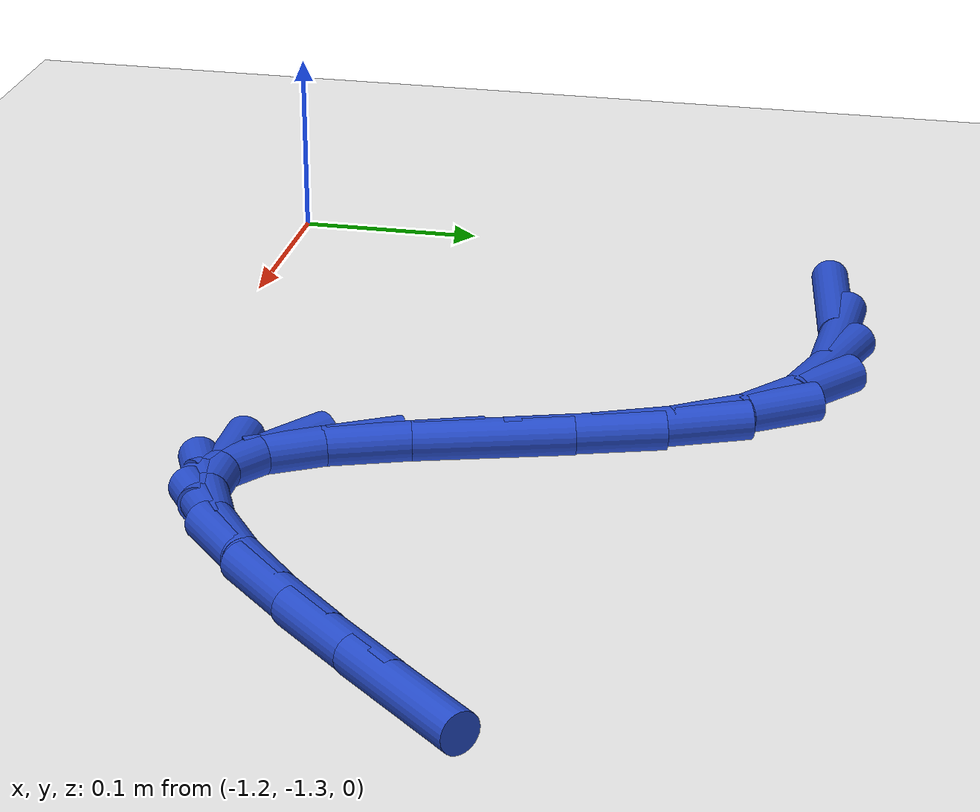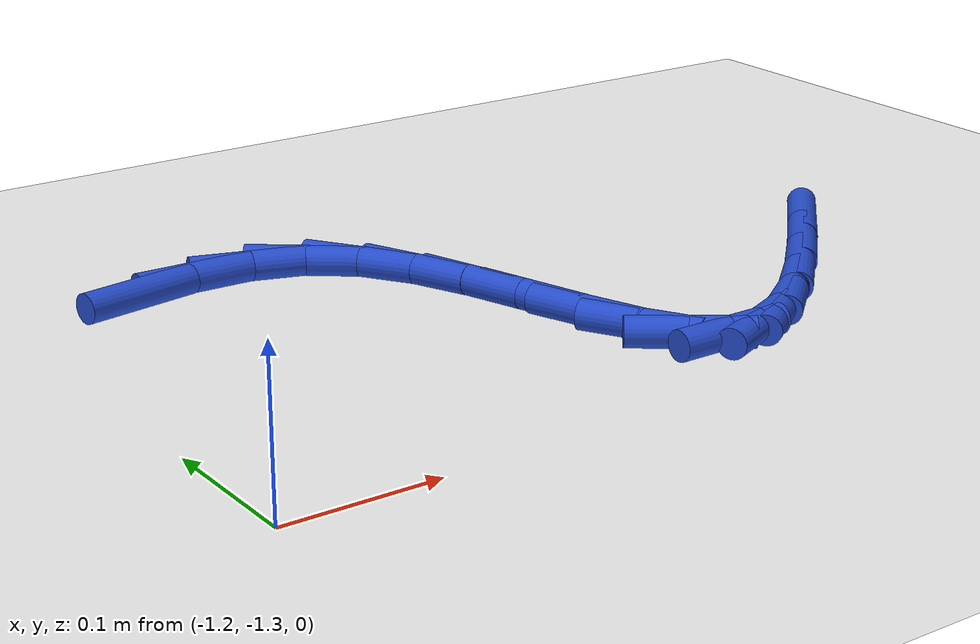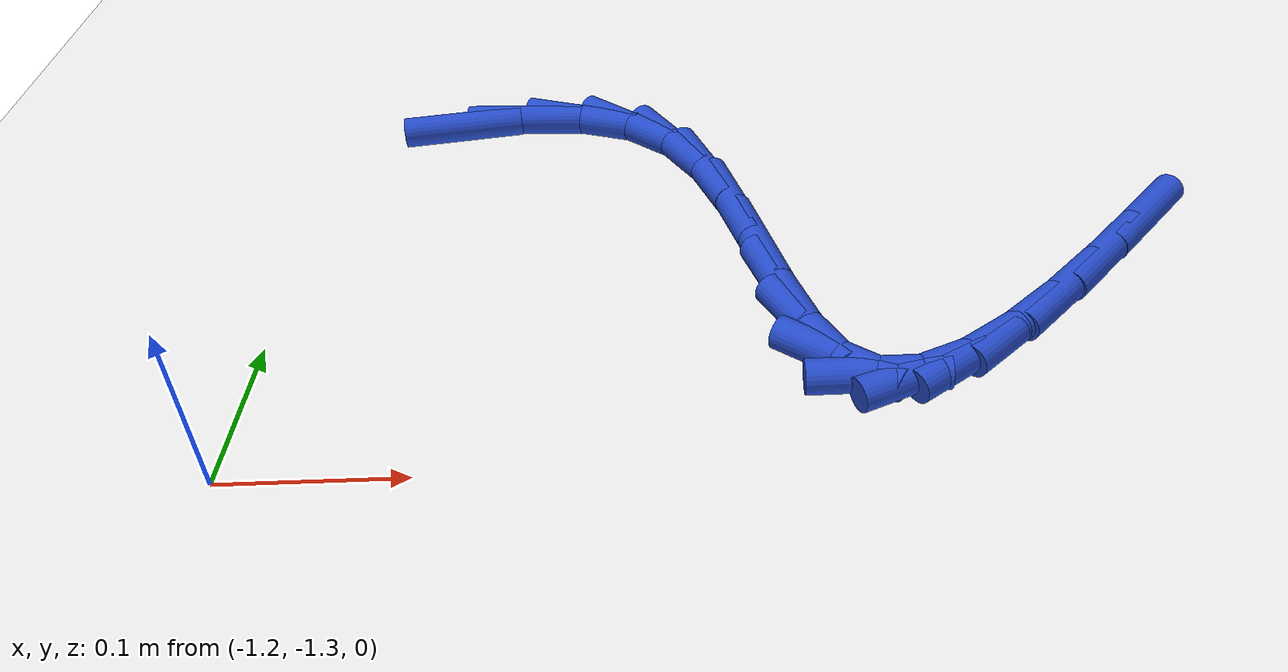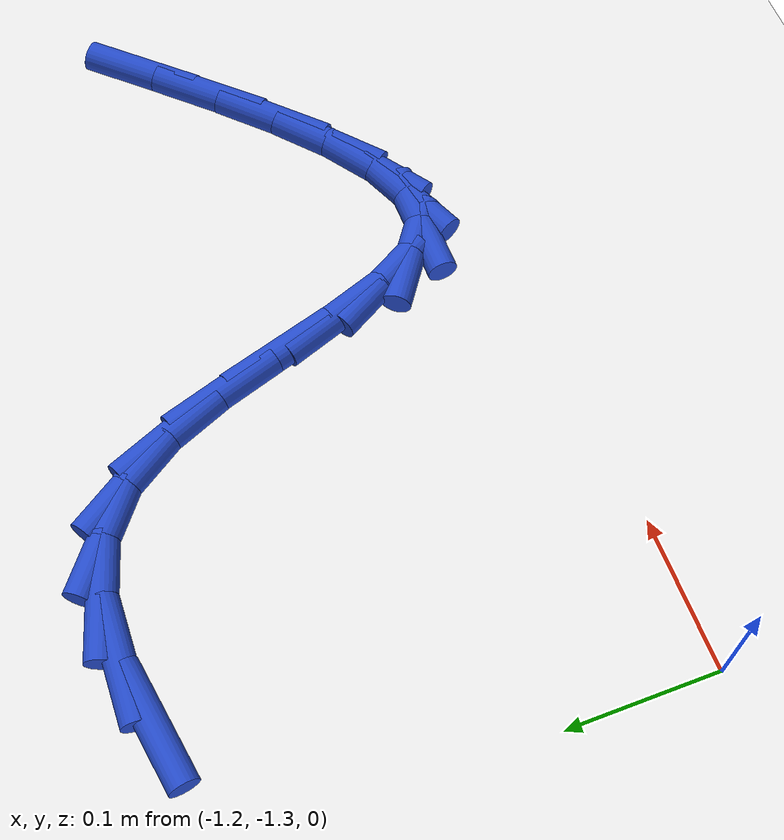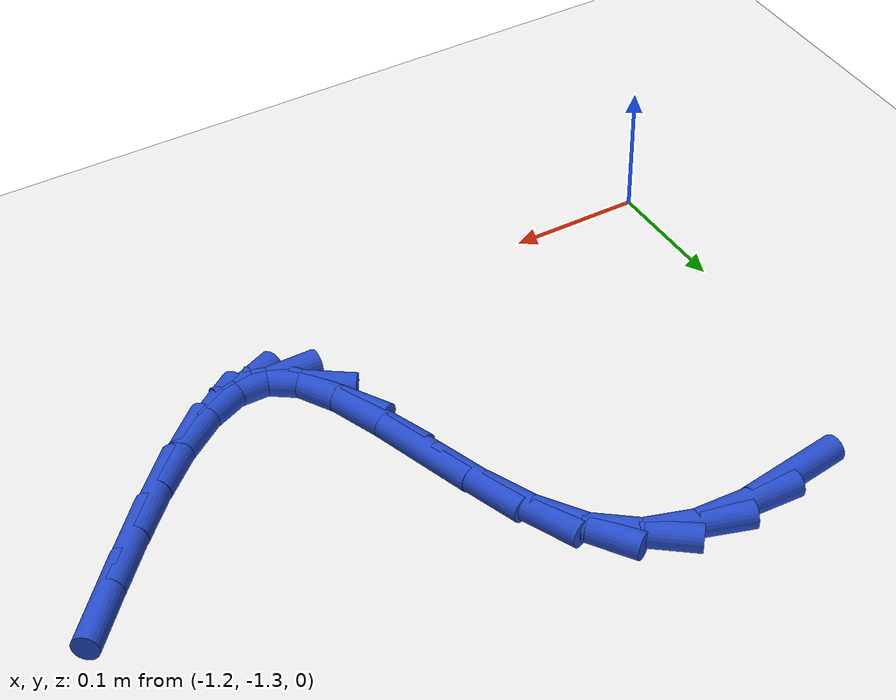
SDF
<sdf version="1.6">
 <world name="default">
  <model name="ground_plane">
   <static>1</static>
   <link name="link">
    <collision name="collision">
     <geometry><plane><normal>0 0 1</normal><size>100 100</size></plane></geometry>
     <surface><friction><ode><mu>100</mu><mu2>50</mu2></ode></friction></surface>
    </collision>
    <visual name="visual">
     <cast_shadows>0</cast_shadows>
     <geometry><plane><normal>0 0 1</normal><size>100 100</size></plane></geometry>
     <material>
      <script><uri>file://media/materials/scripts/gazebo.material</uri><name>Gazebo/WhiteGlow</name></script>
     </material>
    </visual>
   </link>
  </model>
  <model name="line">
   <link name="link_169">
    <pose>-1.117371955021936 -0.9824353823172851 0.01 0 1.57 0.1629075297300771</pose>
    <collision name="collision">
     <geometry><cylinder><radius>0.01</radius><length>0.08</length></cylinder></geometry>
    </collision>
    <visual name="visual">
     <material>
      <script><name>Gazebo/Blue</name><uri>file://media/materials/scripts/gazebo.material</uri></script>
     </material>
     <geometry><cylinder><radius>0.01</radius><length>0.08</length></cylinder></geometry>
    </visual>
   </link>
   <link name="link_170">
    <pose>-1.0744640448341807 -0.9753828613718013 0.01 0 1.57 -0.029237274694766446</pose>
    <collision name="collision">
     <geometry><cylinder><radius>0.01</radius><length>0.08</length></cylinder></geometry>
    </collision>
    <visual name="visual">
     <material>
      <script><name>Gazebo/Blue</name><uri>file://media/materials/scripts/gazebo.material</uri></script>
     </material>
     <geometry><cylinder><radius>0.01</radius><length>0.08</length></cylinder></geometry>
    </visual>
   </link>
   <link name="link_171">
    <pose>-1.034727293191348 -0.9765449868492813 0.01 0 1.57 -0.30687763134854007</pose>
    <collision name="collision">
     <geometry><cylinder><radius>0.01</radius><length>0.08</length></cylinder></geometry>
    </collision>
    <visual name="visual">
     <material>
      <script><name>Gazebo/Blue</name><uri>file://media/materials/scripts/gazebo.material</uri></script>
     </material>
     <geometry><cylinder><radius>0.01</radius><length>0.08</length></cylinder></geometry>
    </visual>
   </link>
   <link name="link_172">
    <pose>-0.999808077636197 -0.9876104735084261 0.01 0 1.57 -0.6704502072337921</pose>
    <collision name="collision">
     <geometry><cylinder><radius>0.01</radius><length>0.08</length></cylinder></geometry>
    </collision>
    <visual name="visual">
     <material>
      <script><name>Gazebo/Blue</name><uri>file://media/materials/scripts/gazebo.material</uri></script>
     </material>
     <geometry><cylinder><radius>0.01</radius><length>0.08</length></cylinder></geometry>
    </visual>
   </link>
   <link name="link_173">
    <pose>-0.9713150173692807 -1.0102051062600146 0.01 0 1.57 -0.9897905267886862</pose>
    <collision name="collision">
     <geometry><cylinder><radius>0.01</radius><length>0.08</length></cylinder></geometry>
    </collision>
    <visual name="visual">
     <material>
      <script><name>Gazebo/Blue</name><uri>file://media/materials/scripts/gazebo.material</uri></script>
     </material>
     <geometry><cylinder><radius>0.01</radius><length>0.08</length></cylinder></geometry>
    </visual>
   </link>
   <link name="link_174">
    <pose>-0.9494170720008114 -1.0435552649087467 0.01 0 1.57 -1.1713484588811667</pose>
    <collision name="collision">
     <geometry><cylinder><radius>0.01</radius><length>0.08</length></cylinder></geometry>
    </collision>
    <visual name="visual">
     <material>
      <script><name>Gazebo/Blue</name><uri>file://media/materials/scripts/gazebo.material</uri></script>
     </material>
     <geometry><cylinder><radius>0.01</radius><length>0.08</length></cylinder></geometry>
    </visual>
   </link>
   <link name="link_175">
    <pose>-0.9324291826627543 -1.083797333934526 0.01 0 1.57 -1.258906567648905</pose>
    <collision name="collision">
     <geometry><cylinder><radius>0.01</radius><length>0.08</length></cylinder></geometry>
    </collision>
    <visual name="visual">
     <material>
      <script><name>Gazebo/Blue</name><uri>file://media/materials/scripts/gazebo.material</uri></script>
     </material>
     <geometry><cylinder><radius>0.01</radius><length>0.08</length></cylinder></geometry>
    </visual>
   </link>
   <link name="link_176">
    <pose>-0.9185439946356303 -1.1268638737380234 0.01 0 1.57 -1.2784016016670763</pose>
    <collision name="collision">
     <geometry><cylinder><radius>0.01</radius><length>0.08</length></cylinder></geometry>
    </collision>
    <visual name="visual">
     <material>
      <script><name>Gazebo/Blue</name><uri>file://media/materials/scripts/gazebo.material</uri></script>
     </material>
     <geometry><cylinder><radius>0.01</radius><length>0.08</length></cylinder></geometry>
    </visual>
   </link>
   <link name="link_177">
    <pose>-0.9059541531999596 -1.168687444719911 0.01 0 1.57 -1.226280986845642</pose>
    <collision name="collision">
     <geometry><cylinder><radius>0.01</radius><length>0.08</length></cylinder></geometry>
    </collision>
    <visual name="visual">
     <material>
      <script><name>Gazebo/Blue</name><uri>file://media/materials/scripts/gazebo.material</uri></script>
     </material>
     <geometry><cylinder><radius>0.01</radius><length>0.08</length></cylinder></geometry>
    </visual>
   </link>
   <link name="link_178">
    <pose>-0.8928523036362629 -1.2052006072808603 0.01 0 1.57 -1.0540059147907774</pose>
    <collision name="collision">
     <geometry><cylinder><radius>0.01</radius><length>0.08</length></cylinder></geometry>
    </collision>
    <visual name="visual">
     <material>
      <script><name>Gazebo/Blue</name><uri>file://media/materials/scripts/gazebo.material</uri></script>
     </material>
     <geometry><cylinder><radius>0.01</radius><length>0.08</length></cylinder></geometry>
    </visual>
   </link>
   <link name="link_179">
    <pose>-0.8774310912250612 -1.2323359218215404 0.01 0 1.57 -0.6178796573748823</pose>
    <collision name="collision">
     <geometry><cylinder><radius>0.01</radius><length>0.08</length></cylinder></geometry>
    </collision>
    <visual name="visual">
     <material>
      <script><name>Gazebo/Blue</name><uri>file://media/materials/scripts/gazebo.material</uri></script>
     </material>
     <geometry><cylinder><radius>0.01</radius><length>0.08</length></cylinder></geometry>
    </visual>
   </link>
   <link name="link_180">
    <pose>-0.857947687141497 -1.2461830270895353 0.01 0 1.57 0.009119959864047207</pose>
    <collision name="collision">
     <geometry><cylinder><radius>0.01</radius><length>0.08</length></cylinder></geometry>
    </collision>
    <visual name="visual">
     <material>
      <script><name>Gazebo/Blue</name><uri>file://media/materials/scripts/gazebo.material</uri></script>
     </material>
     <geometry><cylinder><radius>0.01</radius><length>0.08</length></cylinder></geometry>
    </visual>
   </link>
   <link name="link_181">
    <pose>-0.8339460827787528 -1.2459641273521427 0.01 0 1.57 0.4129444578296005</pose>
    <collision name="collision">
     <geometry><cylinder><radius>0.01</radius><length>0.08</length></cylinder></geometry>
    </collision>
    <visual name="visual">
     <material>
      <script><name>Gazebo/Blue</name><uri>file://media/materials/scripts/gazebo.material</uri></script>
     </material>
     <geometry><cylinder><radius>0.01</radius><length>0.08</length></cylinder></geometry>
    </visual>
   </link>
   <link name="link_182">
    <pose>-0.806156188421138 -1.233788363665068 0.01 0 1.57 0.6183725351666348</pose>
    <collision name="collision">
     <geometry><cylinder><radius>0.01</radius><length>0.08</length></cylinder></geometry>
    </collision>
    <visual name="visual">
     <material>
      <script><name>Gazebo/Blue</name><uri>file://media/materials/scripts/gazebo.material</uri></script>
     </material>
     <geometry><cylinder><radius>0.01</radius><length>0.08</length></cylinder></geometry>
    </visual>
   </link>
   <link name="link_183">
    <pose>-0.7753522177918583 -1.211872726978772 0.01 0 1.57 0.7277607493568979</pose>
    <collision name="collision">
     <geometry><cylinder><radius>0.01</radius><length>0.08</length></cylinder></geometry>
    </collision>
    <visual name="visual">
     <material>
      <script><name>Gazebo/Blue</name><uri>file://media/materials/scripts/gazebo.material</uri></script>
     </material>
     <geometry><cylinder><radius>0.01</radius><length>0.08</length></cylinder></geometry>
    </visual>
   </link>
   <link name="link_184">
    <pose>-0.7423083846141169 -1.1824342082437147 0.01 0 1.57 0.7887904193847046</pose>
    <collision name="collision">
     <geometry><cylinder><radius>0.01</radius><length>0.08</length></cylinder></geometry>
    </collision>
    <visual name="visual">
     <material>
      <script><name>Gazebo/Blue</name><uri>file://media/materials/scripts/gazebo.material</uri></script>
     </material>
     <geometry><cylinder><radius>0.01</radius><length>0.08</length></cylinder></geometry>
    </visual>
   </link>
   <link name="link_185">
    <pose>-0.7077989026111171 -1.1476897984103553 0.01 0 1.57 0.8214258443813748</pose>
    <collision name="collision">
     <geometry><cylinder><radius>0.01</radius><length>0.08</length></cylinder></geometry>
    </collision>
    <visual name="visual">
     <material>
      <script><name>Gazebo/Blue</name><uri>file://media/materials/scripts/gazebo.material</uri></script>
     </material>
     <geometry><cylinder><radius>0.01</radius><length>0.08</length></cylinder></geometry>
    </visual>
   </link>
   <link name="link_186">
    <pose>-0.6725979855060626 -1.109856488429153 0.01 0 1.57 0.8339500279610371</pose>
    <collision name="collision">
     <geometry><cylinder><radius>0.01</radius><length>0.08</length></cylinder></geometry>
    </collision>
    <visual name="visual">
     <material>
      <script><name>Gazebo/Blue</name><uri>file://media/materials/scripts/gazebo.material</uri></script>
     </material>
     <geometry><cylinder><radius>0.01</radius><length>0.08</length></cylinder></geometry>
    </visual>
   </link>
  </model>
 </world>
</sdf>
